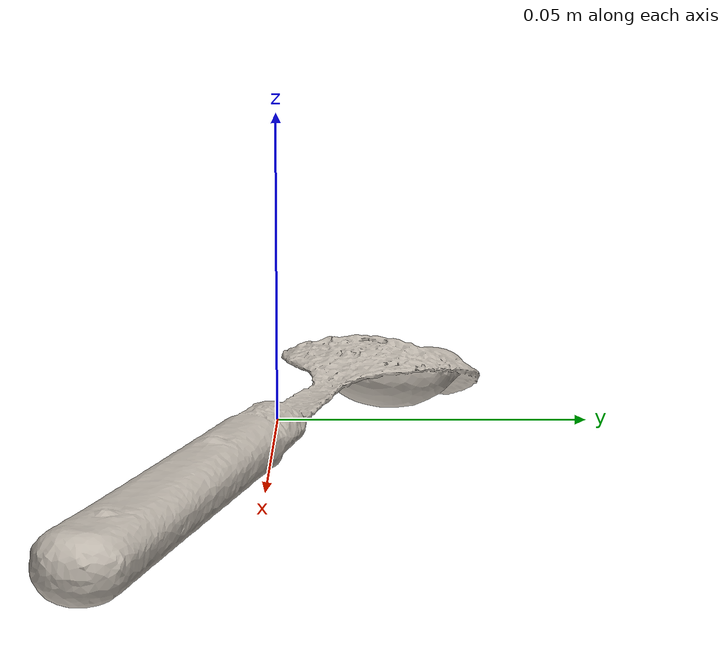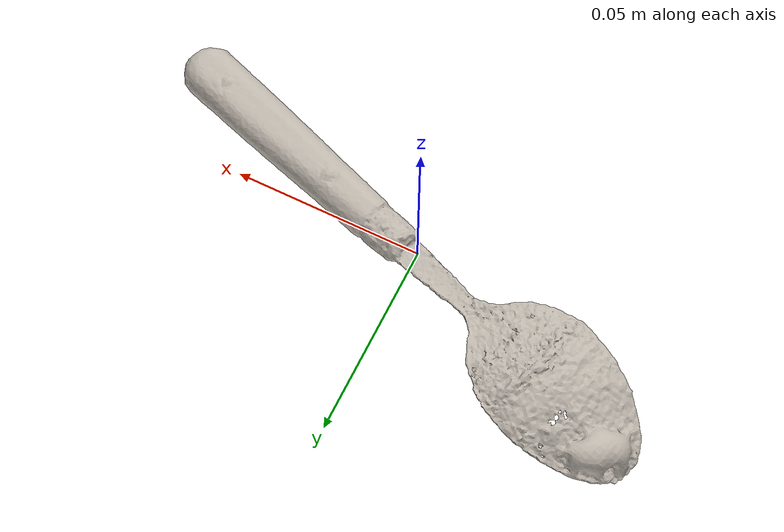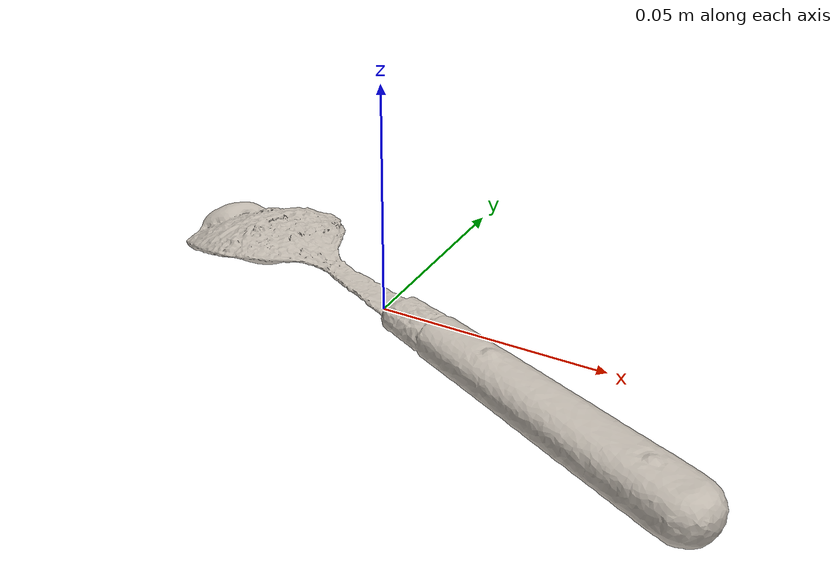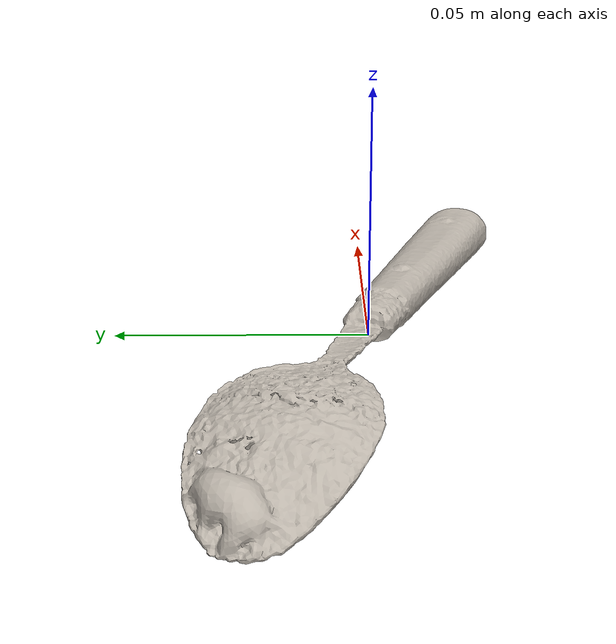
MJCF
<mujoco model="bread">
  <asset>
    <mesh file="nontextured.stl" name="obj_mesh" scale="0.8 0.8 0.8"/>
    <texture file="../../../../../textures/bread.png" type="2d" name="tex-bread" />
    <material name="bread" reflectance="0.7" texrepeat="15 15" texture="tex-bread" texuniform="true"/>
  </asset>
  <worldbody>
    <body>
      <body name="collision">
        <geom pos="0.027132999999999997 0.0050494999999999984 -0.009833" mesh="obj_mesh" type="mesh" solimp="0.998 0.998 0.001" solref="0.001 1" density="50" friction="0.95 0.3 0.1"  material="bread" group="1" condim="4"/>
      </body>
      <body name="visual">
        <geom pos="0.027132999999999997 0.0050494999999999984 -0.009833" mesh="obj_mesh" type="mesh" material="bread"  conaffinity="0" contype="0"  group="0" mass="0.0001"/>
        <geom pos="0.027132999999999997 0.0050494999999999984 -0.009833" mesh="obj_mesh" type="mesh" material="bread"  conaffinity="0" contype="0"  group="1" mass="0.0001"/>
      </body>
      <site rgba="0 0 0 0" size="0.005" pos="0 0 -0.010445999999999999" name="bottom_site"/>
      <site rgba="0 0 0 0" size="0.005" pos="0 0 0.010445999999999999" name="top_site"/>
      <site rgba="0 0 0 0" size="0.005" pos="0.09298000000000001 0.0414645 0.010445999999999999" name="horizontal_radius_site"/>
    </body>
  </worldbody>
</mujoco>
